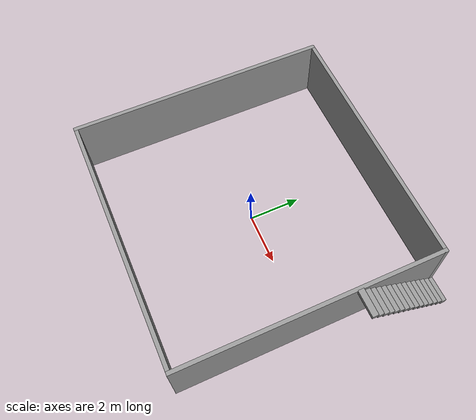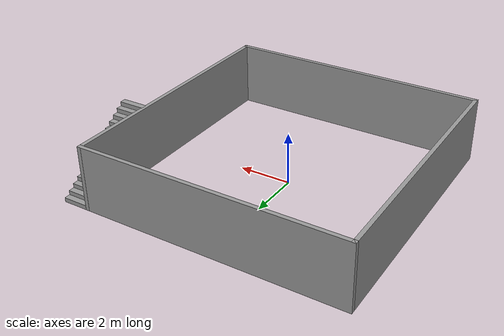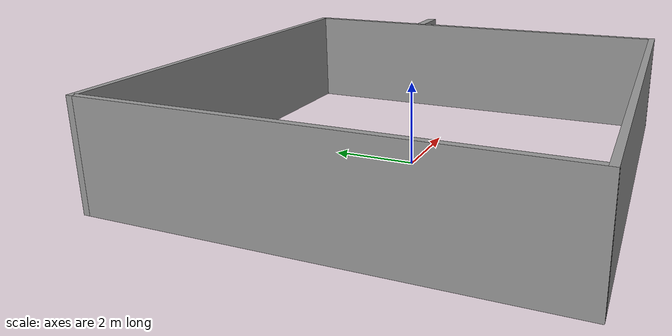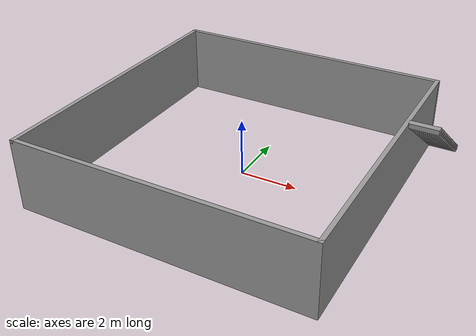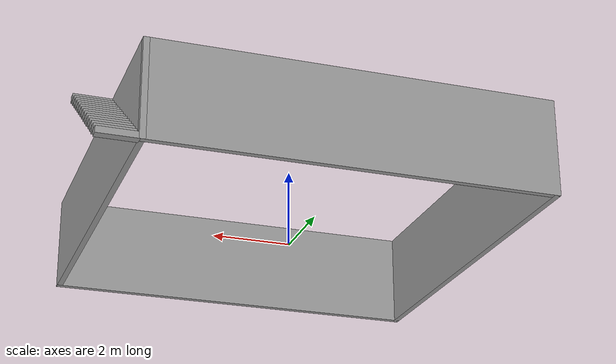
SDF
<?xml version='1.0'?>
<sdf version='1.6'>
  <model name='10X10'>
    <pose frame=''>0.483372 0 0 0 -0 0</pose>
    <link name='Stairs_0'>
      <visual name='Stairs_0_Visual_0'>
        <pose frame=''>5.05837 4.95794 0.083333 0 -0 0</pose>
        <geometry>
          <box>
            <size>1 0.233333 0.166667</size>
          </box>
        </geometry>
        <material>
          <script>
            <uri>file://media/materials/scripts/gazebo.material</uri>
            <name>Gazebo/Grey</name>
          </script>
          <ambient>1 1 1 1</ambient>
        </material>
      </visual>
      <collision name='Stairs_0_Collision_0'>
        <geometry>
          <box>
            <size>1 0.233333 0.166667</size>
          </box>
        </geometry>
        <pose frame=''>5.05837 4.95794 0.083333 0 -0 0</pose>
      </collision>
      <visual name='Stairs_0_Visual_1'>
        <pose frame=''>5.05837 4.72461 0.25 0 -0 0</pose>
        <geometry>
          <box>
            <size>1 0.233333 0.166667</size>
          </box>
        </geometry>
        <material>
          <script>
            <uri>file://media/materials/scripts/gazebo.material</uri>
            <name>Gazebo/Grey</name>
          </script>
          <ambient>1 1 1 1</ambient>
        </material>
      </visual>
      <collision name='Stairs_0_Collision_1'>
        <geometry>
          <box>
            <size>1 0.233333 0.166667</size>
          </box>
        </geometry>
        <pose frame=''>5.05837 4.72461 0.25 0 -0 0</pose>
      </collision>
      <visual name='Stairs_0_Visual_2'>
        <pose frame=''>5.05837 4.49128 0.416667 0 -0 0</pose>
        <geometry>
          <box>
            <size>1 0.233333 0.166667</size>
          </box>
        </geometry>
        <material>
          <script>
            <uri>file://media/materials/scripts/gazebo.material</uri>
            <name>Gazebo/Grey</name>
          </script>
          <ambient>1 1 1 1</ambient>
        </material>
      </visual>
      <collision name='Stairs_0_Collision_2'>
        <geometry>
          <box>
            <size>1 0.233333 0.166667</size>
          </box>
        </geometry>
        <pose frame=''>5.05837 4.49128 0.416667 0 -0 0</pose>
      </collision>
      <visual name='Stairs_0_Visual_3'>
        <pose frame=''>5.05837 4.25794 0.583333 0 -0 0</pose>
        <geometry>
          <box>
            <size>1 0.233333 0.166667</size>
          </box>
        </geometry>
        <material>
          <script>
            <uri>file://media/materials/scripts/gazebo.material</uri>
            <name>Gazebo/Grey</name>
          </script>
          <ambient>1 1 1 1</ambient>
        </material>
      </visual>
      <collision name='Stairs_0_Collision_3'>
        <geometry>
          <box>
            <size>1 0.233333 0.166667</size>
          </box>
        </geometry>
        <pose frame=''>5.05837 4.25794 0.583333 0 -0 0</pose>
      </collision>
      <visual name='Stairs_0_Visual_4'>
        <pose frame=''>5.05837 4.02461 0.75 0 -0 0</pose>
        <geometry>
          <box>
            <size>1 0.233333 0.166667</size>
          </box>
        </geometry>
        <material>
          <script>
            <uri>file://media/materials/scripts/gazebo.material</uri>
            <name>Gazebo/Grey</name>
          </script>
          <ambient>1 1 1 1</ambient>
        </material>
      </visual>
      <collision name='Stairs_0_Collision_4'>
        <geometry>
          <box>
            <size>1 0.233333 0.166667</size>
          </box>
        </geometry>
        <pose frame=''>5.05837 4.02461 0.75 0 -0 0</pose>
      </collision>
      <visual name='Stairs_0_Visual_5'>
        <pose frame=''>5.05837 3.79128 0.916667 0 -0 0</pose>
        <geometry>
          <box>
            <size>1 0.233333 0.166667</size>
          </box>
        </geometry>
        <material>
          <script>
            <uri>file://media/materials/scripts/gazebo.material</uri>
            <name>Gazebo/Grey</name>
          </script>
          <ambient>1 1 1 1</ambient>
        </material>
      </visual>
      <collision name='Stairs_0_Collision_5'>
        <geometry>
          <box>
            <size>1 0.233333 0.166667</size>
          </box>
        </geometry>
        <pose frame=''>5.05837 3.79128 0.916667 0 -0 0</pose>
      </collision>
      <visual name='Stairs_0_Visual_6'>
        <pose frame=''>5.05837 3.55794 1.08333 0 -0 0</pose>
        <geometry>
          <box>
            <size>1 0.233333 0.166667</size>
          </box>
        </geometry>
        <material>
          <script>
            <uri>file://media/materials/scripts/gazebo.material</uri>
            <name>Gazebo/Grey</name>
          </script>
          <ambient>1 1 1 1</ambient>
        </material>
      </visual>
      <collision name='Stairs_0_Collision_6'>
        <geometry>
          <box>
            <size>1 0.233333 0.166667</size>
          </box>
        </geometry>
        <pose frame=''>5.05837 3.55794 1.08333 0 -0 0</pose>
      </collision>
      <visual name='Stairs_0_Visual_7'>
        <pose frame=''>5.05837 3.32461 1.25 0 -0 0</pose>
        <geometry>
          <box>
            <size>1 0.233333 0.166667</size>
          </box>
        </geometry>
        <material>
          <script>
            <uri>file://media/materials/scripts/gazebo.material</uri>
            <name>Gazebo/Grey</name>
          </script>
          <ambient>1 1 1 1</ambient>
        </material>
      </visual>
      <collision name='Stairs_0_Collision_7'>
        <geometry>
          <box>
            <size>1 0.233333 0.166667</size>
          </box>
        </geometry>
        <pose frame=''>5.05837 3.32461 1.25 0 -0 0</pose>
      </collision>
      <visual name='Stairs_0_Visual_8'>
        <pose frame=''>5.05837 3.09128 1.41667 0 -0 0</pose>
        <geometry>
          <box>
            <size>1 0.233333 0.166667</size>
          </box>
        </geometry>
        <material>
          <script>
            <uri>file://media/materials/scripts/gazebo.material</uri>
            <name>Gazebo/Grey</name>
          </script>
          <ambient>1 1 1 1</ambient>
        </material>
      </visual>
      <collision name='Stairs_0_Collision_8'>
        <geometry>
          <box>
            <size>1 0.233333 0.166667</size>
          </box>
        </geometry>
        <pose frame=''>5.05837 3.09128 1.41667 0 -0 0</pose>
      </collision>
      <visual name='Stairs_0_Visual_9'>
        <pose frame=''>5.05837 2.85794 1.58333 0 -0 0</pose>
        <geometry>
          <box>
            <size>1 0.233333 0.166667</size>
          </box>
        </geometry>
        <material>
          <script>
            <uri>file://media/materials/scripts/gazebo.material</uri>
            <name>Gazebo/Grey</name>
          </script>
          <ambient>1 1 1 1</ambient>
        </material>
      </visual>
      <collision name='Stairs_0_Collision_9'>
        <geometry>
          <box>
            <size>1 0.233333 0.166667</size>
          </box>
        </geometry>
        <pose frame=''>5.05837 2.85794 1.58333 0 -0 0</pose>
      </collision>
      <visual name='Stairs_0_Visual_10'>
        <pose frame=''>5.05837 2.62461 1.75 0 -0 0</pose>
        <geometry>
          <box>
            <size>1 0.233333 0.166667</size>
          </box>
        </geometry>
        <material>
          <script>
            <uri>file://media/materials/scripts/gazebo.material</uri>
            <name>Gazebo/Grey</name>
          </script>
          <ambient>1 1 1 1</ambient>
        </material>
      </visual>
      <collision name='Stairs_0_Collision_10'>
        <geometry>
          <box>
            <size>1 0.233333 0.166667</size>
          </box>
        </geometry>
        <pose frame=''>5.05837 2.62461 1.75 0 -0 0</pose>
      </collision>
      <visual name='Stairs_0_Visual_11'>
        <pose frame=''>5.05837 2.39128 1.91667 0 -0 0</pose>
        <geometry>
          <box>
            <size>1 0.233333 0.166667</size>
          </box>
        </geometry>
        <material>
          <script>
            <uri>file://media/materials/scripts/gazebo.material</uri>
            <name>Gazebo/Grey</name>
          </script>
          <ambient>1 1 1 1</ambient>
        </material>
      </visual>
      <collision name='Stairs_0_Collision_11'>
        <geometry>
          <box>
            <size>1 0.233333 0.166667</size>
          </box>
        </geometry>
        <pose frame=''>5.05837 2.39128 1.91667 0 -0 0</pose>
      </collision>
      <visual name='Stairs_0_Visual_12'>
        <pose frame=''>5.05837 2.15794 2.08333 0 -0 0</pose>
        <geometry>
          <box>
            <size>1 0.233333 0.166667</size>
          </box>
        </geometry>
        <material>
          <script>
            <uri>file://media/materials/scripts/gazebo.material</uri>
            <name>Gazebo/Grey</name>
          </script>
          <ambient>1 1 1 1</ambient>
        </material>
      </visual>
      <collision name='Stairs_0_Collision_12'>
        <geometry>
          <box>
            <size>1 0.233333 0.166667</size>
          </box>
        </geometry>
        <pose frame=''>5.05837 2.15794 2.08333 0 -0 0</pose>
      </collision>
      <visual name='Stairs_0_Visual_13'>
        <pose frame=''>5.05837 1.92461 2.25 0 -0 0</pose>
        <geometry>
          <box>
            <size>1 0.233333 0.166667</size>
          </box>
        </geometry>
        <material>
          <script>
            <uri>file://media/materials/scripts/gazebo.material</uri>
            <name>Gazebo/Grey</name>
          </script>
          <ambient>1 1 1 1</ambient>
        </material>
      </visual>
      <collision name='Stairs_0_Collision_13'>
        <geometry>
          <box>
            <size>1 0.233333 0.166667</size>
          </box>
        </geometry>
        <pose frame=''>5.05837 1.92461 2.25 0 -0 0</pose>
      </collision>
      <visual name='Stairs_0_Visual_14'>
        <pose frame=''>5.05837 1.69128 2.41667 0 -0 0</pose>
        <geometry>
          <box>
            <size>1 0.233333 0.166667</size>
          </box>
        </geometry>
        <material>
          <script>
            <uri>file://media/materials/scripts/gazebo.material</uri>
            <name>Gazebo/Grey</name>
          </script>
          <ambient>1 1 1 1</ambient>
        </material>
      </visual>
      <collision name='Stairs_0_Collision_14'>
        <geometry>
          <box>
            <size>1 0.233333 0.166667</size>
          </box>
        </geometry>
        <pose frame=''>5.05837 1.69128 2.41667 0 -0 0</pose>
      </collision>
    </link>
    <link name='Wall_1'>
      <collision name='Wall_1_Collision'>
        <geometry>
          <box>
            <size>10.15 0.15 2.5</size>
          </box>
        </geometry>
        <pose frame=''>0 0 1.25 0 -0 0</pose>
      </collision>
      <visual name='Wall_1_Visual'>
        <pose frame=''>0 0 1.25 0 -0 0</pose>
        <geometry>
          <box>
            <size>10.15 0.15 2.5</size>
          </box>
        </geometry>
        <material>
          <script>
            <uri>file://media/materials/scripts/gazebo.material</uri>
            <name>Gazebo/Grey</name>
          </script>
          <ambient>1 1 1 1</ambient>
        </material>
      </visual>
      <pose frame=''>-0.483372 -5 0 0 -0 0</pose>
    </link>
    <link name='Wall_4'>
      <collision name='Wall_4_Collision'>
        <geometry>
          <box>
            <size>10.15 0.15 2.5</size>
          </box>
        </geometry>
        <pose frame=''>0 0 1.25 0 -0 0</pose>
      </collision>
      <visual name='Wall_4_Visual'>
        <pose frame=''>0 0 1.25 0 -0 0</pose>
        <geometry>
          <box>
            <size>10.15 0.15 2.5</size>
          </box>
        </geometry>
        <material>
          <script>
            <uri>file://media/materials/scripts/gazebo.material</uri>
            <name>Gazebo/Grey</name>
          </script>
          <ambient>1 1 1 1</ambient>
        </material>
      </visual>
      <pose frame=''>4.51663 0 0 0 -0 1.5708</pose>
    </link>
    <link name='Wall_6'>
      <collision name='Wall_6_Collision'>
        <geometry>
          <box>
            <size>10.15 0.15 2.5</size>
          </box>
        </geometry>
        <pose frame=''>0 0 1.25 0 -0 0</pose>
      </collision>
      <visual name='Wall_6_Visual'>
        <pose frame=''>0 0 1.25 0 -0 0</pose>
        <geometry>
          <box>
            <size>10.15 0.15 2.5</size>
          </box>
        </geometry>
        <material>
          <script>
            <uri>file://media/materials/scripts/gazebo.material</uri>
            <name>Gazebo/Grey</name>
          </script>
          <ambient>1 1 1 1</ambient>
        </material>
      </visual>
      <pose frame=''>-0.483372 5 0 0 -0 3.14159</pose>
    </link>
    <link name='Wall_7'>
      <collision name='Wall_7_Collision'>
        <geometry>
          <box>
            <size>10.15 0.15 2.5</size>
          </box>
        </geometry>
        <pose frame=''>0 0 1.25 0 -0 0</pose>
      </collision>
      <visual name='Wall_7_Visual'>
        <pose frame=''>0 0 1.25 0 -0 0</pose>
        <geometry>
          <box>
            <size>10.15 0.15 2.5</size>
          </box>
        </geometry>
        <material>
          <script>
            <uri>file://media/materials/scripts/gazebo.material</uri>
            <name>Gazebo/Grey</name>
          </script>
          <ambient>1 1 1 1</ambient>
        </material>
      </visual>
      <pose frame=''>-5.48337 0 0 0 0 -1.5708</pose>
    </link>
    <static>1</static>
  </model>
</sdf>
